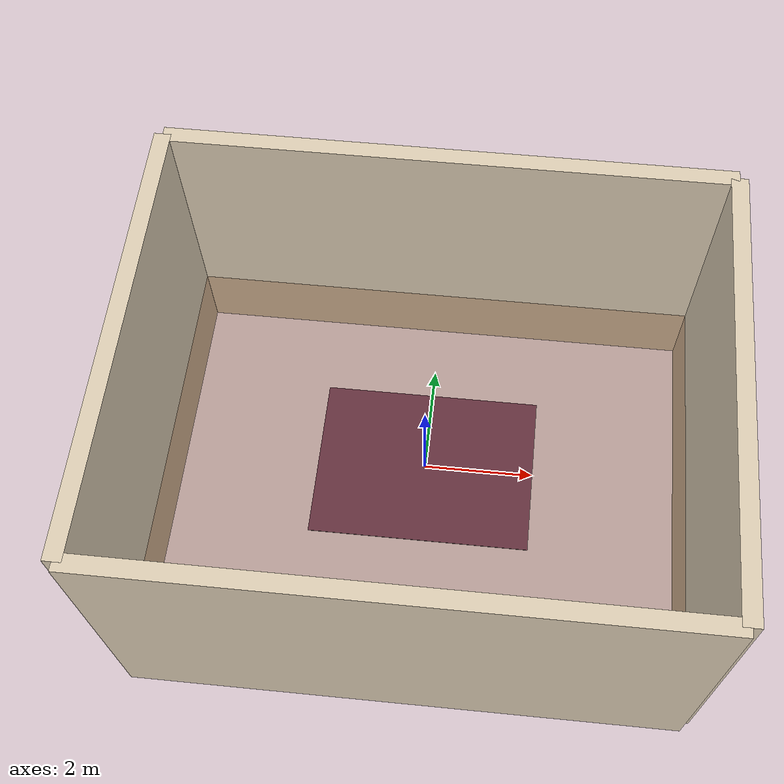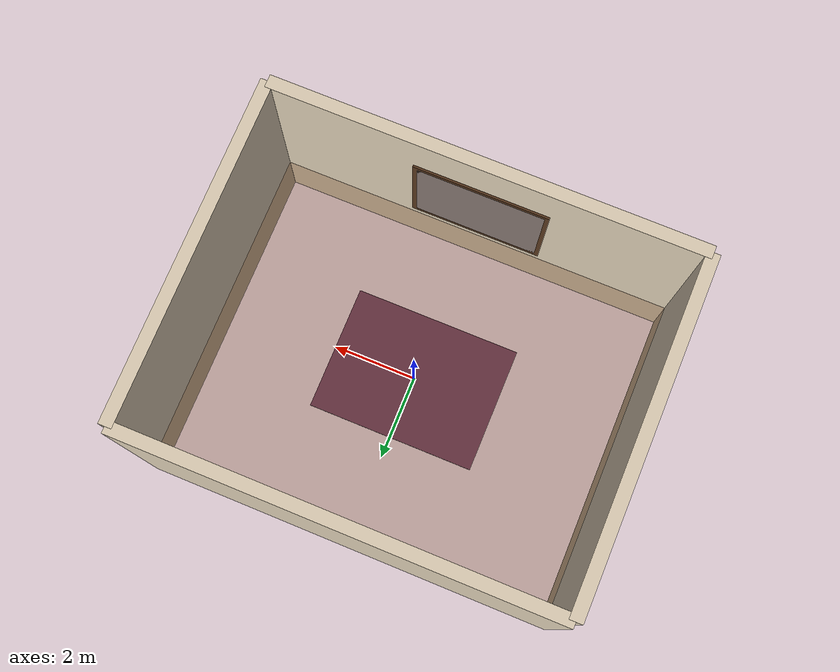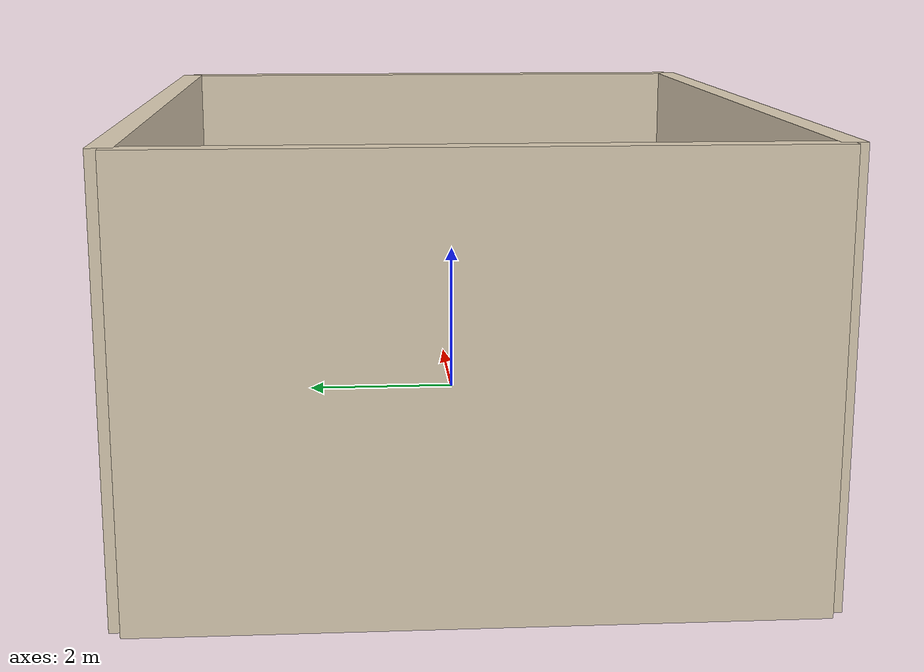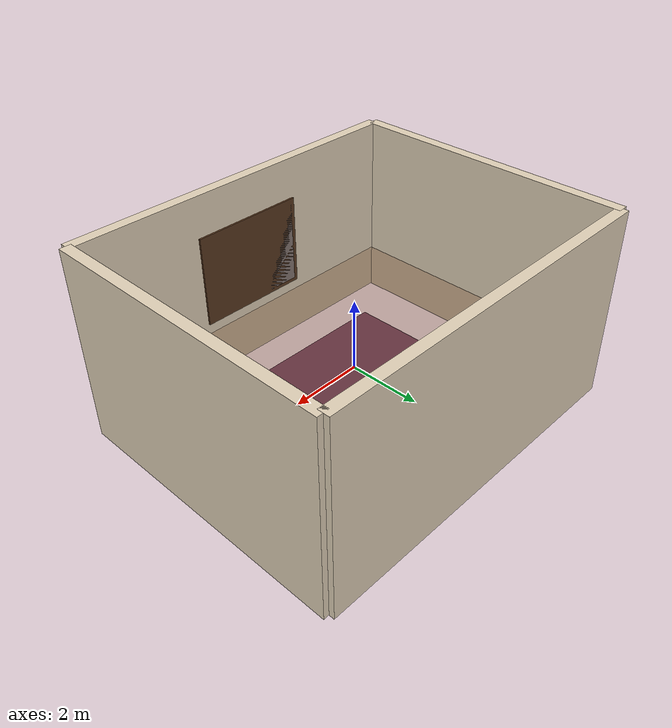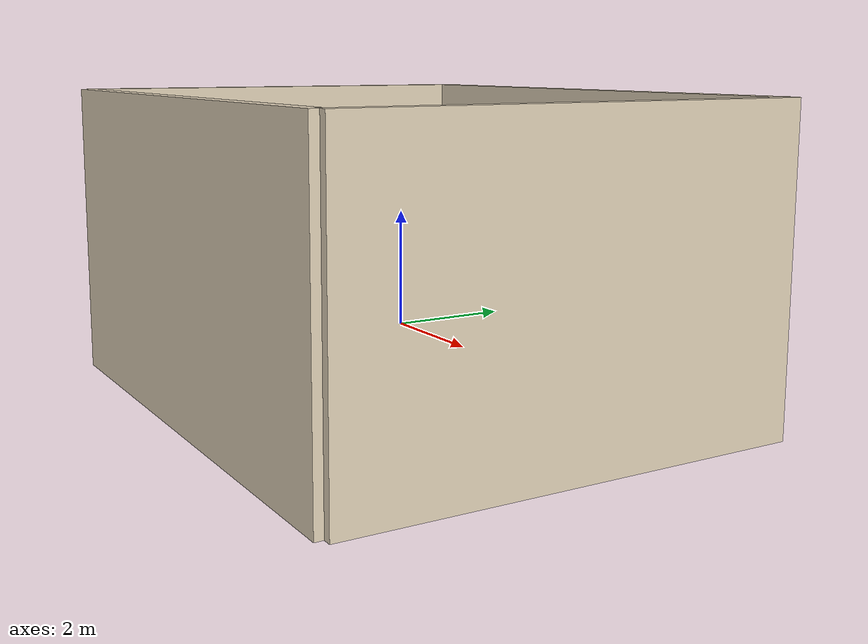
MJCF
<mujoco model="room">
<!-- Room assets and geometry -->
  <asset>
    <!-- Rich oak hardwood -->
    <texture name="oak_floor" type="2d" builtin="checker"
             rgb1="0.52 0.33 0.18" rgb2="0.48 0.29 0.15"
             width="128" height="128"/>

    <!-- Warm beige walls with wainscoting texture -->
    <texture name="beige_walls" type="2d" builtin="flat"
             rgb1="0.88 0.82 0.72" rgb2="0.85 0.79 0.69"
             width="512" height="512"/>

    <!-- Dark wood wainscoting -->
    <texture name="dark_wood" type="2d" builtin="flat"
             rgb1="0.35 0.22 0.12" rgb2="0.32 0.19 0.10"
             width="256" height="256"/>

    <!-- Persian rug -->
    <texture name="persian_rug" type="2d" builtin="gradient"
             rgb1="0.45 0.15 0.15" rgb2="0.35 0.25 0.35"
             width="512" height="512"/>

    <!-- Materials -->
    <material name="oak_hardwood" texture="oak_floor"
              texrepeat="25 20"
              specular="0.6"
              shininess="0.5"
              reflectance="0.2"/>

    <material name="warm_walls" texture="beige_walls"
              texrepeat="2 2"
              specular="0.15"
              shininess="0.08"
              reflectance="0.02"/>

    <material name="wainscot" texture="dark_wood"
              texrepeat="4 1"
              specular="0.4"
              shininess="0.3"
              reflectance="0.1"/>

    <material name="oriental_rug" texture="persian_rug"
              texrepeat="3 2"
              specular="0.02"
              shininess="0.01"
              reflectance="0.0"/>
  </asset>

  <worldbody>
    <!-- Rich oak hardwood floor -->
    <geom name="floor" type="plane"
          size="5 4 0.1"
          material="oak_hardwood"
          friction="1.2 0.05 0.01"/>

    <!-- Oriental rug -->
    <geom name="rug" type="box"
          size="2 1.5 0.005"
          pos="0 0 0.005"
          material="oriental_rug"
          friction="1.8 0.1 0.1"/>

    <!-- Warm beige walls -->
    <geom name="wall_north" type="box"
          size="5 0.15 2.7"
          pos="0 4 1.35"
          material="warm_walls"/>
    <geom name="wall_south" type="box"
          size="5 0.15 2.7"
          pos="0 -4 1.35"
          material="warm_walls"/>
    <geom name="wall_east" type="box"
          size="0.15 4 2.7"
          pos="5 0 1.35"
          material="warm_walls"/>
    <geom name="wall_west" type="box"
          size="0.15 4 2.7"
          pos="-5 0 1.35"
          material="warm_walls"/>

    <!-- Wood wainscoting (lower wall panels) -->
    <geom name="wainscot_north" type="box"
          size="5 0.05 0.4"
          pos="0 3.95 0.4"
          material="wainscot"/>
    <geom name="wainscot_east" type="box"
          size="0.05 4 0.4"
          pos="4.95 0 0.4"
          material="wainscot"/>
    <geom name="wainscot_west" type="box"
          size="0.05 4 0.4"
          pos="-4.95 0 0.4"
          material="wainscot"/>

    <!-- Large window with wooden frame -->
    <geom name="window_frame" type="box"
          size="1.6 0.1 1.3"
          pos="0 -3.9 1.6"
          material="wainscot"/>
    <geom name="window_glass" type="box"
          size="1.5 0.05 1.2"
          pos="0 -3.85 1.6"
          rgba="0.85 0.9 1.0 0.4"/>

    <!-- Crown molding -->
    <geom name="crown_molding" type="box"
          size="5 0.05 0.05"
          pos="0 3.95 2.65"
          material="wainscot"/>

    <!-- Baseboards -->
    <geom name="baseboard_north" type="box"
          size="5 0.05 0.05"
          pos="0 3.95 0.05"
          material="wainscot"/>
    <geom name="baseboard_east" type="box"
          size="0.05 4 0.05"
          pos="4.95 0 0.05"
          material="wainscot"/>
    <geom name="baseboard_west" type="box"
          size="0.05 4 0.05"
          pos="-4.95 0 0.05"
          material="wainscot"/>
  </worldbody>
</mujoco>
